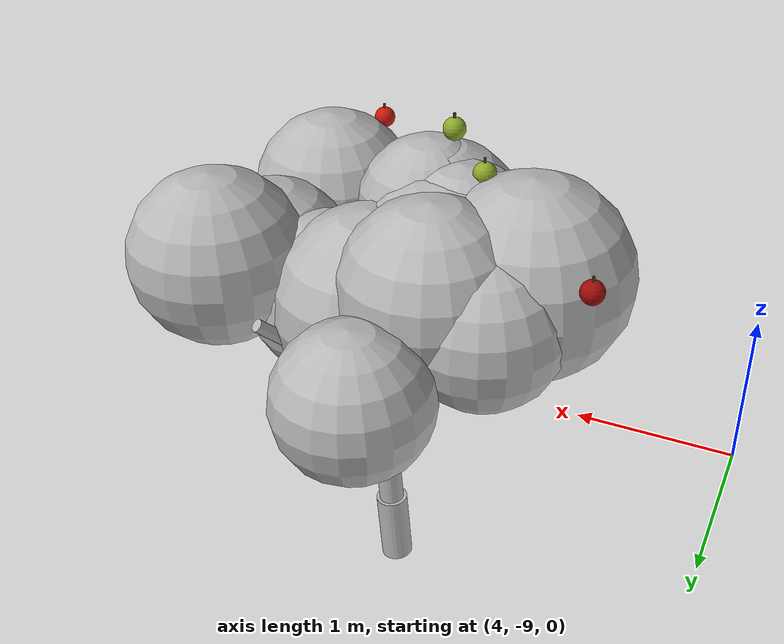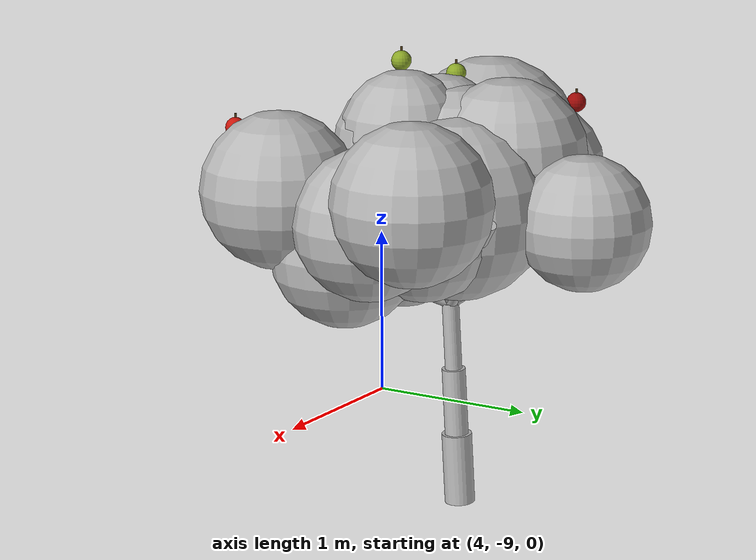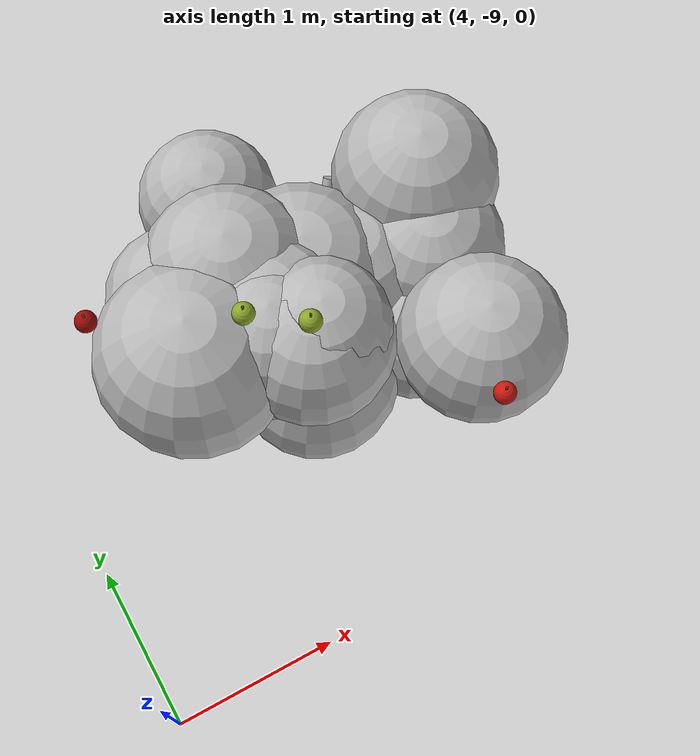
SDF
<sdf version="1.6">
 <world name="default">
  <model name="tree_r0_t10">
   <static>true</static>
   <link name="tree_r0_t10_trunk0">
    <pose>5.5984 -7.5081 0.1860 0.0213 0.0577 0</pose>
    <collision name="tree_r0_t10_trunk0_c">
     <geometry><cylinder><radius>0.0824</radius><length>0.3943</length></cylinder></geometry>
    </collision>
    <visual name="tree_r0_t10_trunk0_v">
     <geometry><cylinder><radius>0.0824</radius><length>0.3943</length></cylinder></geometry>
     <material>
      <script>
       <uri>model://orchard/materials/scripts</uri>
       <uri>model://orchard/materials/textures</uri>
       <name>Orchard/Bark</name>
      </script>
     </material>
    </visual>
   </link>
   <link name="tree_r0_t10_trunk1">
    <pose>5.6199 -7.5160 0.5579 0.0213 0.0577 0</pose>
    <visual name="tree_r0_t10_trunk1_v">
     <geometry><cylinder><radius>0.0643</radius><length>0.3943</length></cylinder></geometry>
     <material>
      <script>
       <uri>model://orchard/materials/scripts</uri>
       <uri>model://orchard/materials/textures</uri>
       <name>Orchard/Bark</name>
      </script>
     </material>
    </visual>
   </link>
   <link name="tree_r0_t10_trunk2">
    <pose>5.6413 -7.5239 0.9298 0.0213 0.0577 0</pose>
    <visual name="tree_r0_t10_trunk2_v">
     <geometry><cylinder><radius>0.0462</radius><length>0.3943</length></cylinder></geometry>
     <material>
      <script>
       <uri>model://orchard/materials/scripts</uri>
       <uri>model://orchard/materials/textures</uri>
       <name>Orchard/Bark</name>
      </script>
     </material>
    </visual>
   </link>
   <link name="tree_r0_t10_br0">
    <pose>5.8797 -7.4731 1.4203 0.0000 0.6555 0.2360</pose>
    <visual name="tree_r0_t10_br0_v">
     <geometry><cylinder><radius>0.0230</radius><length>0.7681</length></cylinder></geometry>
     <material>
      <script>
       <uri>model://orchard/materials/scripts</uri>
       <uri>model://orchard/materials/textures</uri>
       <name>Orchard/Bark</name>
      </script>
     </material>
    </visual>
   </link>
   <link name="tree_r0_t10_br1">
    <pose>5.8377 -7.2973 1.4014 0.0000 0.8033 0.8929</pose>
    <visual name="tree_r0_t10_br1_v">
     <geometry><cylinder><radius>0.0315</radius><length>0.8226</length></cylinder></geometry>
     <material>
      <script>
       <uri>model://orchard/materials/scripts</uri>
       <uri>model://orchard/materials/textures</uri>
       <name>Orchard/Bark</name>
      </script>
     </material>
    </visual>
   </link>
   <link name="tree_r0_t10_br2">
    <pose>5.5984 -7.2644 1.3015 0.0000 0.9666 1.7717</pose>
    <visual name="tree_r0_t10_br2_v">
     <geometry><cylinder><radius>0.0244</radius><length>0.6535</length></cylinder></geometry>
     <material>
      <script>
       <uri>model://orchard/materials/scripts</uri>
       <uri>model://orchard/materials/textures</uri>
       <name>Orchard/Bark</name>
      </script>
     </material>
    </visual>
   </link>
   <link name="tree_r0_t10_br3">
    <pose>5.4023 -7.4792 1.3274 0.0000 0.8772 2.9491</pose>
    <visual name="tree_r0_t10_br3_v">
     <geometry><cylinder><radius>0.0257</radius><length>0.6618</length></cylinder></geometry>
     <material>
      <script>
       <uri>model://orchard/materials/scripts</uri>
       <uri>model://orchard/materials/textures</uri>
       <name>Orchard/Bark</name>
      </script>
     </material>
    </visual>
   </link>
   <link name="tree_r0_t10_br4">
    <pose>5.5304 -7.7115 1.4063 0.0000 0.6488 4.1272</pose>
    <visual name="tree_r0_t10_br4_v">
     <geometry><cylinder><radius>0.0325</radius><length>0.7290</length></cylinder></geometry>
     <material>
      <script>
       <uri>model://orchard/materials/scripts</uri>
       <uri>model://orchard/materials/textures</uri>
       <name>Orchard/Bark</name>
      </script>
     </material>
    </visual>
   </link>
   <link name="tree_r0_t10_br5">
    <pose>5.9234 -7.7778 1.2879 0.0000 1.1344 5.5389</pose>
    <visual name="tree_r0_t10_br5_v">
     <geometry><cylinder><radius>0.0233</radius><length>0.8141</length></cylinder></geometry>
     <material>
      <script>
       <uri>model://orchard/materials/scripts</uri>
       <uri>model://orchard/materials/textures</uri>
       <name>Orchard/Bark</name>
      </script>
     </material>
    </visual>
   </link>
   <link name="tree_r0_t10_fol0">
    <pose>5.4731 -7.9085 1.9145 0 0 0</pose>
    <visual name="tree_r0_t10_fol0_v">
     <geometry><sphere><radius>0.4085</radius></sphere></geometry>
     <material>
      <script>
       <uri>model://orchard/materials/scripts</uri>
       <uri>model://orchard/materials/textures</uri>
       <name>Orchard/Foliage1</name>
      </script>
     </material>
    </visual>
   </link>
   <link name="tree_r0_t10_fol1">
    <pose>4.9356 -7.6899 1.8578 0 0 0</pose>
    <visual name="tree_r0_t10_fol1_v">
     <geometry><sphere><radius>0.4920</radius></sphere></geometry>
     <material>
      <script>
       <uri>model://orchard/materials/scripts</uri>
       <uri>model://orchard/materials/textures</uri>
       <name>Orchard/Foliage2</name>
      </script>
     </material>
    </visual>
   </link>
   <link name="tree_r0_t10_fol2">
    <pose>5.4209 -6.8434 1.6038 0 0 0</pose>
    <visual name="tree_r0_t10_fol2_v">
     <geometry><sphere><radius>0.3673</radius></sphere></geometry>
     <material>
      <script>
       <uri>model://orchard/materials/scripts</uri>
       <uri>model://orchard/materials/textures</uri>
       <name>Orchard/Foliage0</name>
      </script>
     </material>
    </visual>
   </link>
   <link name="tree_r0_t10_fol3">
    <pose>5.6317 -7.4899 1.6488 0 0 0</pose>
    <visual name="tree_r0_t10_fol3_v">
     <geometry><sphere><radius>0.4945</radius></sphere></geometry>
     <material>
      <script>
       <uri>model://orchard/materials/scripts</uri>
       <uri>model://orchard/materials/textures</uri>
       <name>Orchard/Foliage0</name>
      </script>
     </material>
    </visual>
   </link>
   <link name="tree_r0_t10_fol4">
    <pose>5.3127 -7.7844 1.9331 0 0 0</pose>
    <visual name="tree_r0_t10_fol4_v">
     <geometry><sphere><radius>0.3666</radius></sphere></geometry>
     <material>
      <script>
       <uri>model://orchard/materials/scripts</uri>
       <uri>model://orchard/materials/textures</uri>
       <name>Orchard/Foliage1</name>
      </script>
     </material>
    </visual>
   </link>
   <link name="tree_r0_t10_fol5">
    <pose>5.2893 -7.3807 1.8742 0 0 0</pose>
    <visual name="tree_r0_t10_fol5_v">
     <geometry><sphere><radius>0.4395</radius></sphere></geometry>
     <material>
      <script>
       <uri>model://orchard/materials/scripts</uri>
       <uri>model://orchard/materials/textures</uri>
       <name>Orchard/Foliage0</name>
      </script>
     </material>
    </visual>
   </link>
   <link name="tree_r0_t10_fol6">
    <pose>5.6294 -7.6208 1.6070 0 0 0</pose>
    <visual name="tree_r0_t10_fol6_v">
     <geometry><sphere><radius>0.3651</radius></sphere></geometry>
     <material>
      <script>
       <uri>model://orchard/materials/scripts</uri>
       <uri>model://orchard/materials/textures</uri>
       <name>Orchard/Foliage0</name>
      </script>
     </material>
    </visual>
   </link>
   <link name="tree_r0_t10_fol7">
    <pose>5.3431 -7.6831 1.7908 0 0 0</pose>
    <visual name="tree_r0_t10_fol7_v">
     <geometry><sphere><radius>0.4756</radius></sphere></geometry>
     <material>
      <script>
       <uri>model://orchard/materials/scripts</uri>
       <uri>model://orchard/materials/textures</uri>
       <name>Orchard/Foliage2</name>
      </script>
     </material>
    </visual>
   </link>
   <link name="tree_r0_t10_fol8">
    <pose>5.4823 -7.9340 1.4497 0 0 0</pose>
    <visual name="tree_r0_t10_fol8_v">
     <geometry><sphere><radius>0.4241</radius></sphere></geometry>
     <material>
      <script>
       <uri>model://orchard/materials/scripts</uri>
       <uri>model://orchard/materials/textures</uri>
       <name>Orchard/Foliage1</name>
      </script>
     </material>
    </visual>
   </link>
   <link name="tree_r0_t10_fol9">
    <pose>6.0932 -7.9166 1.4495 0 0 0</pose>
    <visual name="tree_r0_t10_fol9_v">
     <geometry><sphere><radius>0.4032</radius></sphere></geometry>
     <material>
      <script>
       <uri>model://orchard/materials/scripts</uri>
       <uri>model://orchard/materials/textures</uri>
       <name>Orchard/Foliage1</name>
      </script>
     </material>
    </visual>
   </link>
   <link name="tree_r0_t10_fol10">
    <pose>5.0334 -7.3644 1.7632 0 0 0</pose>
    <visual name="tree_r0_t10_fol10_v">
     <geometry><sphere><radius>0.3916</radius></sphere></geometry>
     <material>
      <script>
       <uri>model://orchard/materials/scripts</uri>
       <uri>model://orchard/materials/textures</uri>
       <name>Orchard/Foliage2</name>
      </script>
     </material>
    </visual>
   </link>
   <link name="tree_r0_t10_fol11">
    <pose>6.3751 -7.3302 1.8321 0 0 0</pose>
    <visual name="tree_r0_t10_fol11_v">
     <geometry><sphere><radius>0.4299</radius></sphere></geometry>
     <material>
      <script>
       <uri>model://orchard/materials/scripts</uri>
       <uri>model://orchard/materials/textures</uri>
       <name>Orchard/Foliage1</name>
      </script>
     </material>
    </visual>
   </link>
   <link name="tree_r0_t10_fol12">
    <pose>6.2739 -7.6517 1.6705 0 0 0</pose>
    <visual name="tree_r0_t10_fol12_v">
     <geometry><sphere><radius>0.4052</radius></sphere></geometry>
     <material>
      <script>
       <uri>model://orchard/materials/scripts</uri>
       <uri>model://orchard/materials/textures</uri>
       <name>Orchard/Foliage0</name>
      </script>
     </material>
    </visual>
   </link>
   <link name="tree_r0_t10_fol13">
    <pose>5.8967 -7.5481 1.6096 0 0 0</pose>
    <visual name="tree_r0_t10_fol13_v">
     <geometry><sphere><radius>0.4154</radius></sphere></geometry>
     <material>
      <script>
       <uri>model://orchard/materials/scripts</uri>
       <uri>model://orchard/materials/textures</uri>
       <name>Orchard/Foliage2</name>
      </script>
     </material>
    </visual>
   </link>
   <link name="tree_r0_t10_fol14">
    <pose>6.2369 -8.2391 1.7803 0 0 0</pose>
    <visual name="tree_r0_t10_fol14_v">
     <geometry><sphere><radius>0.4242</radius></sphere></geometry>
     <material>
      <script>
       <uri>model://orchard/materials/scripts</uri>
       <uri>model://orchard/materials/textures</uri>
       <name>Orchard/Foliage1</name>
      </script>
     </material>
    </visual>
   </link>
   <link name="tree_r0_t10_fol15">
    <pose>5.5262 -7.8971 1.9946 0 0 0</pose>
    <visual name="tree_r0_t10_fol15_v">
     <geometry><sphere><radius>0.3507</radius></sphere></geometry>
     <material>
      <script>
       <uri>model://orchard/materials/scripts</uri>
       <uri>model://orchard/materials/textures</uri>
       <name>Orchard/Foliage2</name>
      </script>
     </material>
    </visual>
   </link>
   <link name="tree_r0_t10_fol16">
    <pose>5.5476 -7.7473 1.7670 0 0 0</pose>
    <visual name="tree_r0_t10_fol16_v">
     <geometry><sphere><radius>0.3611</radius></sphere></geometry>
     <material>
      <script>
       <uri>model://orchard/materials/scripts</uri>
       <uri>model://orchard/materials/textures</uri>
       <name>Orchard/Foliage0</name>
      </script>
     </material>
    </visual>
   </link>
   <link name="tree_r0_t10_ap0">
    <pose>6.1099 -8.6022 2.0568 0 0 0</pose>
    <visual name="tree_r0_t10_ap0_v">
     <geometry><sphere><radius>0.0550</radius></sphere></geometry>
     <material>
      <ambient>0.320 0.036 0.020 1.00</ambient>
      <diffuse>0.800 0.090 0.050 1.00</diffuse>
      <specular>0.45 0.35 0.32 1</specular>
     </material>
    </visual>
   </link>
   <link name="tree_r0_t10_st0">
    <pose>6.1099 -8.6022 2.1091 0 0 0</pose>
    <visual name="tree_r0_t10_st0_v">
     <geometry><cylinder><radius>0.0060</radius><length>0.0500</length></cylinder></geometry>
     <material><ambient>0.128 0.096 0.040 1.00</ambient><diffuse>0.320 0.240 0.100 1.00</diffuse></material>
    </visual>
   </link>
   <link name="tree_r0_t10_ap1">
    <pose>5.1958 -7.7664 2.2879 0 0 0</pose>
    <visual name="tree_r0_t10_ap1_v">
     <geometry><sphere><radius>0.0550</radius></sphere></geometry>
     <material>
      <ambient>0.220 0.264 0.064 1.00</ambient>
      <diffuse>0.550 0.660 0.160 1.00</diffuse>
      <specular>0.45 0.35 0.32 1</specular>
     </material>
    </visual>
   </link>
   <link name="tree_r0_t10_st1">
    <pose>5.1958 -7.7664 2.3401 0 0 0</pose>
    <visual name="tree_r0_t10_st1_v">
     <geometry><cylinder><radius>0.0060</radius><length>0.0500</length></cylinder></geometry>
     <material><ambient>0.128 0.096 0.040 1.00</ambient><diffuse>0.320 0.240 0.100 1.00</diffuse></material>
    </visual>
   </link>
   <link name="tree_r0_t10_ap2">
    <pose>5.4306 -7.9737 2.3756 0 0 0</pose>
    <visual name="tree_r0_t10_ap2_v">
     <geometry><sphere><radius>0.0550</radius></sphere></geometry>
     <material>
      <ambient>0.220 0.264 0.064 1.00</ambient>
      <diffuse>0.550 0.660 0.160 1.00</diffuse>
      <specular>0.45 0.35 0.32 1</specular>
     </material>
    </visual>
   </link>
   <link name="tree_r0_t10_st2">
    <pose>5.4306 -7.9737 2.4278 0 0 0</pose>
    <visual name="tree_r0_t10_st2_v">
     <geometry><cylinder><radius>0.0060</radius><length>0.0500</length></cylinder></geometry>
     <material><ambient>0.128 0.096 0.040 1.00</ambient><diffuse>0.320 0.240 0.100 1.00</diffuse></material>
    </visual>
   </link>
   <link name="tree_r0_t10_ap3">
    <pose>4.5556 -7.3628 2.0623 0 0 0</pose>
    <visual name="tree_r0_t10_ap3_v">
     <geometry><sphere><radius>0.0550</radius></sphere></geometry>
     <material>
      <ambient>0.248 0.016 0.012 1.00</ambient>
      <diffuse>0.620 0.040 0.030 1.00</diffuse>
      <specular>0.45 0.35 0.32 1</specular>
     </material>
    </visual>
   </link>
   <link name="tree_r0_t10_st3">
    <pose>4.5556 -7.3628 2.1145 0 0 0</pose>
    <visual name="tree_r0_t10_st3_v">
     <geometry><cylinder><radius>0.0060</radius><length>0.0500</length></cylinder></geometry>
     <material><ambient>0.128 0.096 0.040 1.00</ambient><diffuse>0.320 0.240 0.100 1.00</diffuse></material>
    </visual>
   </link>
  </model>
 </world>
</sdf>
